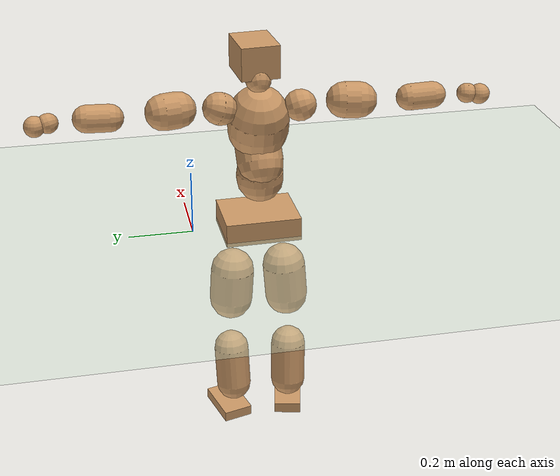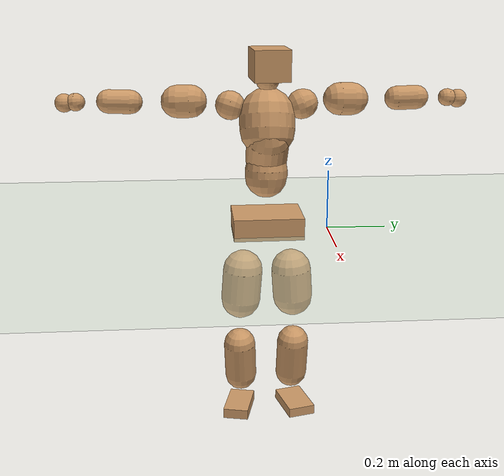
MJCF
<mujoco model="humanoid">
  <compiler coordinate="local" angle="radian"/>
  <default>
    <joint damping="0.0" armature="0.01" stiffness="0.0" limited="true"/>
    <geom conaffinity="1" condim="3" contype="7" margin="0.001" rgba="0.8 0.6 .4 1"/>
  </default>
  <asset>
    <texture type="skybox" builtin="gradient" rgb1=".4 .5 .6" rgb2="0 0 0" width="100" height="100"/>
    <texture builtin="flat" height="1278" mark="cross" markrgb="1 1 1" name="texgeom" random="0.01" rgb1="0.8 0.6 0.4" rgb2="0.8 0.6 0.4" type="cube" width="127"/>
    <texture builtin="checker" height="100" name="texplane" rgb1="0 0 0" rgb2="0.8 0.8 0.8" type="2d" width="100"/>
    <material name="MatPlane" reflectance="0.5" shininess="1" specular="1" texrepeat="60 60" texture="texplane"/>
    <material name="geom" texture="texgeom" texuniform="true"/>
  </asset>
  <worldbody>
    <light cutoff="100" diffuse="1 1 1" dir="-0 0 -1.3" directional="true" exponent="1" pos="0 0 1.3" specular=".1 .1 .1"/>
    <geom conaffinity="1" condim="3" name="floor" pos="0 0 0" rgba="0.8 0.9 0.8 1" size="100 100 .2" type="plane" material="MatPlane"/>
    <body name="Pelvis" pos="-0 -0.2062 0.0339">
      <freejoint name="Pelvis"/>
      <geom type="box" contype="1" conaffinity="1" density="5359.375371" pos="-0.0054 -0.0001 -0.0117" size="0.0918 0.1176 0.0369" quat="1.0000 0.0000 0.0000 0.0084" name="Pelvis"/>
      <body name="L_Hip" pos="-0.0028 0.0777 -0.0839">
        <joint name="L_Hip_x" type="hinge" pos="0 0 0" axis="1 0 0" stiffness="1600" damping="160" armature="0.02" range="-180.0000 180.0000"/>
        <joint name="L_Hip_y" type="hinge" pos="0 0 0" axis="0 1 0" stiffness="1600" damping="160" armature="0.02" range="-180.0000 180.0000"/>
        <joint name="L_Hip_z" type="hinge" pos="0 0 0" axis="0 0 1" stiffness="1600" damping="160" armature="0.02" range="-180.0000 180.0000"/>
        <geom type="capsule" contype="1" conaffinity="1" density="2040.816327" size="0.0684" fromto="-0.0027 0.0065 -0.0982 -0.0055 0.0132 -0.2009" name="L_Hip"/>
        <body name="L_Knee" pos="-0.0082 0.0197 -0.2991">
          <joint name="L_Knee_x" type="hinge" pos="0 0 0" axis="1 0 0" stiffness="1600" damping="160" armature="0.02" range="-180.0000 180.0000"/>
          <joint name="L_Knee_y" type="hinge" pos="0 0 0" axis="0 1 0" stiffness="1600" damping="160" armature="0.02" range="-180.0000 180.0000"/>
          <joint name="L_Knee_z" type="hinge" pos="0 0 0" axis="0 0 1" stiffness="1600" damping="160" armature="0.02" range="-180.0000 180.0000"/>
          <geom type="capsule" contype="1" conaffinity="1" density="1234.567901" size="0.0559" fromto="-0.0121 -0.0022 -0.0850 -0.0306 -0.0056 -0.2145" name="L_Knee"/>
          <body name="L_Ankle" pos="-0.0427 -0.0079 -0.2996">
            <joint name="L_Ankle_x" type="hinge" pos="0 0 0" axis="1 0 0" stiffness="1600" damping="160" armature="0.02" range="-180.0000 180.0000"/>
            <joint name="L_Ankle_y" type="hinge" pos="0 0 0" axis="0 1 0" stiffness="1600" damping="160" armature="0.02" range="-180.0000 180.0000"/>
            <joint name="L_Ankle_z" type="hinge" pos="0 0 0" axis="0 0 1" stiffness="1600" damping="160" armature="0.02" range="-180.0000 180.0000"/>
            <geom type="box" contype="1" conaffinity="1" density="1000.000002" pos="0.0506 0.0130 -0.0221" size="0.0765 0.0474 0.0166" quat="0.9921 0.0000 0.0000 0.1255" name="L_Ankle"/>
            <body name="L_Toe" pos="0.1013 0.026 -0.0441">
              <joint name="L_Toe_x" type="hinge" pos="0 0 0" axis="1 0 0" stiffness="1000" damping="100" armature="0.02" range="-180.0000 180.0000"/>
              <joint name="L_Toe_y" type="hinge" pos="0 0 0" axis="0 1 0" stiffness="1000" damping="100" armature="0.02" range="-180.0000 180.0000"/>
              <joint name="L_Toe_z" type="hinge" pos="0 0 0" axis="0 0 1" stiffness="1000" damping="100" armature="0.02" range="-180.0000 180.0000"/>
              <geom type="box" contype="1" conaffinity="1" density="7921966.196565" pos="0.0000 0.0000 0.0229" size="0.0009 0.0023 0.0009" quat="0.9912 0.0000 0.0000 0.1322" name="L_Toe"/>
            </body>
          </body>
        </body>
      </body>
      <body name="R_Hip" pos="-0.0024 -0.0761 -0.0828">
        <joint name="R_Hip_x" type="hinge" pos="0 0 0" axis="1 0 0" stiffness="1600" damping="160" armature="0.02" range="-180.0000 180.0000"/>
        <joint name="R_Hip_y" type="hinge" pos="0 0 0" axis="0 1 0" stiffness="1600" damping="160" armature="0.02" range="-180.0000 180.0000"/>
        <joint name="R_Hip_z" type="hinge" pos="0 0 0" axis="0 0 1" stiffness="1600" damping="160" armature="0.02" range="-180.0000 180.0000"/>
        <geom type="capsule" contype="1" conaffinity="1" density="2040.816327" size="0.068" fromto="-0.0035 -0.0073 -0.0977 -0.0075 -0.0155 -0.2075" name="R_Hip"/>
        <body name="R_Knee" pos="-0.011 -0.0227 -0.3052">
          <joint name="R_Knee_x" type="hinge" pos="0 0 0" axis="1 0 0" stiffness="1600" damping="160" armature="0.02" range="-180.0000 180.0000"/>
          <joint name="R_Knee_y" type="hinge" pos="0 0 0" axis="0 1 0" stiffness="1600" damping="160" armature="0.02" range="-180.0000 180.0000"/>
          <joint name="R_Knee_z" type="hinge" pos="0 0 0" axis="0 0 1" stiffness="1600" damping="160" armature="0.02" range="-180.0000 180.0000"/>
          <geom type="capsule" contype="1" conaffinity="1" density="1234.567901" size="0.056" fromto="-0.0122 0.0025 -0.0851 -0.0308 0.0064 -0.2152" name="R_Knee"/>
          <body name="R_Ankle" pos="-0.0429 0.009 -0.3003">
            <joint name="R_Ankle_x" type="hinge" pos="0 0 0" axis="1 0 0" stiffness="1600" damping="160" armature="0.02" range="-180.0000 180.0000"/>
            <joint name="R_Ankle_y" type="hinge" pos="0 0 0" axis="0 1 0" stiffness="1600" damping="160" armature="0.02" range="-180.0000 180.0000"/>
            <joint name="R_Ankle_z" type="hinge" pos="0 0 0" axis="0 0 1" stiffness="1600" damping="160" armature="0.02" range="-180.0000 180.0000"/>
            <geom type="box" contype="1" conaffinity="1" density="999.999938" pos="0.0522 -0.0117 -0.0190" size="0.0744 0.0439 0.0176" quat="0.9939 0.0000 0.0000 -0.1104" name="R_Ankle"/>
            <body name="R_Toe" pos="0.1043 -0.0235 -0.0381">
              <joint name="R_Toe_x" type="hinge" pos="0 0 0" axis="1 0 0" stiffness="1000" damping="100" armature="0.02" range="-180.0000 180.0000"/>
              <joint name="R_Toe_y" type="hinge" pos="0 0 0" axis="0 1 0" stiffness="1000" damping="100" armature="0.02" range="-180.0000 180.0000"/>
              <joint name="R_Toe_z" type="hinge" pos="0 0 0" axis="0 0 1" stiffness="1000" damping="100" armature="0.02" range="-180.0000 180.0000"/>
              <geom type="box" contype="1" conaffinity="1" density="7942871.620237" pos="0.0000 0.0000 0.0201" size="0.0009 0.0022 0.0009" quat="0.9950 0.0000 0.0000 -0.0994" name="R_Toe"/>
            </body>
          </body>
        </body>
      </body>
      <body name="Torso" pos="-0.027 -0.0021 0.0963">
        <joint name="Torso_x" type="hinge" pos="0 0 0" axis="1 0 0" stiffness="2000" damping="200" armature="0.02" range="-180.0000 180.0000"/>
        <joint name="Torso_y" type="hinge" pos="0 0 0" axis="0 1 0" stiffness="2000" damping="200" armature="0.02" range="-180.0000 180.0000"/>
        <joint name="Torso_z" type="hinge" pos="0 0 0" axis="0 0 1" stiffness="2000" damping="200" armature="0.02" range="-180.0000 180.0000"/>
        <geom type="capsule" contype="1" conaffinity="1" density="2040.816327" size="0.0718" fromto="-0.0043 0.0017 0.0716 -0.0028 0.0011 0.0473" name="Torso"/>
        <body name="Spine" pos="-0.0071 0.0028 0.1189">
          <joint name="Spine_x" type="hinge" pos="0 0 0" axis="1 0 0" stiffness="2000" damping="200" armature="0.02" range="-180.0000 180.0000"/>
          <joint name="Spine_y" type="hinge" pos="0 0 0" axis="0 1 0" stiffness="2000" damping="200" armature="0.02" range="-180.0000 180.0000"/>
          <joint name="Spine_z" type="hinge" pos="0 0 0" axis="0 0 1" stiffness="2000" damping="200" armature="0.02" range="-180.0000 180.0000"/>
          <geom type="capsule" contype="1" conaffinity="1" density="2040.816327" size="0.0705" fromto="0.0383 0.0024 0.0592 -0.0091 -0.0006 -0.0141" name="Spine"/>
          <body name="Chest" pos="0.0292 0.0018 0.0451">
            <joint name="Chest_x" type="hinge" pos="0 0 0" axis="1 0 0" stiffness="2000" damping="200" armature="0.02" range="-180.0000 180.0000"/>
            <joint name="Chest_y" type="hinge" pos="0 0 0" axis="0 1 0" stiffness="2000" damping="200" armature="0.02" range="-180.0000 180.0000"/>
            <joint name="Chest_z" type="hinge" pos="0 0 0" axis="0 0 1" stiffness="2000" damping="200" armature="0.02" range="-180.0000 180.0000"/>
            <geom type="capsule" contype="1" conaffinity="1" density="2040.816327" size="0.0924" fromto="-0.0264 -0.0000 0.0886 -0.0133 -0.0000 0.0445" name="Chest"/>
            <body name="Neck" pos="-0.049 0.0011 0.1841">
              <joint name="Neck_x" type="hinge" pos="0 0 0" axis="1 0 0" stiffness="1000" damping="100" armature="0.02" range="-180.0000 180.0000"/>
              <joint name="Neck_y" type="hinge" pos="0 0 0" axis="0 1 0" stiffness="1000" damping="100" armature="0.02" range="-180.0000 180.0000"/>
              <joint name="Neck_z" type="hinge" pos="0 0 0" axis="0 0 1" stiffness="1000" damping="100" armature="0.02" range="-180.0000 180.0000"/>
              <geom type="capsule" contype="1" conaffinity="1" density="1000" size="0.0392" fromto="0.0254 0.0008 0.0299 0.0174 0.0005 0.0205" name="Neck"/>
              <body name="Head" pos="0.0428 0.0013 0.0504">
                <joint name="Head_x" type="hinge" pos="0 0 0" axis="1 0 0" stiffness="1000" damping="100" armature="0.02" range="-180.0000 180.0000"/>
                <joint name="Head_y" type="hinge" pos="0 0 0" axis="0 1 0" stiffness="1000" damping="100" armature="0.02" range="-180.0000 180.0000"/>
                <joint name="Head_z" type="hinge" pos="0 0 0" axis="0 0 1" stiffness="1000" damping="100" armature="0.02" range="-180.0000 180.0000"/>
                <geom type="box" contype="1" conaffinity="1" density="2249.99969" pos="0.0224 0.0016 0.0262" size="0.0736 0.0585 0.0501" quat="0.9993 0.0000 0.0000 0.0367" name="Head"/>
              </body>
            </body>
            <body name="L_Thorax" pos="-0.0313 0.0743 0.109">
              <joint name="L_Thorax_x" type="hinge" pos="0 0 0" axis="1 0 0" stiffness="1000" damping="100" armature="0.02" range="-180.0000 180.0000"/>
              <joint name="L_Thorax_y" type="hinge" pos="0 0 0" axis="0 1 0" stiffness="1000" damping="100" armature="0.02" range="-180.0000 180.0000"/>
              <joint name="L_Thorax_z" type="hinge" pos="0 0 0" axis="0 0 1" stiffness="1000" damping="100" armature="0.02" range="-180.0000 180.0000"/>
              <geom type="capsule" contype="1" conaffinity="1" density="1000" size="0.0489" fromto="-0.0051 0.0458 0.0165 -0.0044 0.0399 0.0144" name="L_Thorax"/>
              <body name="L_Shoulder" pos="-0.0096 0.0856 0.0309">
                <joint name="L_Shoulder_x" type="hinge" pos="0 0 0" axis="1 0 0" stiffness="1000" damping="100" armature="0.02" range="-720.0000 720.0000"/>
                <joint name="L_Shoulder_y" type="hinge" pos="0 0 0" axis="0 1 0" stiffness="1000" damping="100" armature="0.02" range="-720.0000 720.0000"/>
                <joint name="L_Shoulder_z" type="hinge" pos="0 0 0" axis="0 0 1" stiffness="1000" damping="100" armature="0.02" range="-720.0000 720.0000"/>
                <geom type="capsule" contype="1" conaffinity="1" density="1000" size="0.054" fromto="-0.0111 0.0832 -0.0027 -0.0169 0.1262 -0.0041" name="L_Shoulder"/>
                <body name="L_Elbow" pos="-0.0281 0.2095 -0.0068">
                  <joint name="L_Elbow_x" type="hinge" pos="0 0 0" axis="1 0 0" stiffness="1000" damping="100" armature="0.02" range="-720.0000 720.0000"/>
                  <joint name="L_Elbow_y" type="hinge" pos="0 0 0" axis="0 1 0" stiffness="1000" damping="100" armature="0.02" range="-720.0000 720.0000"/>
                  <joint name="L_Elbow_z" type="hinge" pos="0 0 0" axis="0 0 1" stiffness="1000" damping="100" armature="0.02" range="-720.0000 720.0000"/>
                  <geom type="capsule" contype="1" conaffinity="1" density="1000" size="0.0402" fromto="0.0009 0.0702 0.0022 0.0017 0.1367 0.0042" name="L_Elbow"/>
                  <body name="L_Wrist" pos="0.0026 0.2069 0.0064">
                    <joint name="L_Wrist_x" type="hinge" pos="0 0 0" axis="1 0 0" stiffness="600" damping="60" armature="0.02" range="-180.0000 180.0000"/>
                    <joint name="L_Wrist_y" type="hinge" pos="0 0 0" axis="0 1 0" stiffness="600" damping="60" armature="0.02" range="-180.0000 180.0000"/>
                    <joint name="L_Wrist_z" type="hinge" pos="0 0 0" axis="0 0 1" stiffness="600" damping="60" armature="0.02" range="-180.0000 180.0000"/>
                    <geom type="capsule" contype="1" conaffinity="1" density="1000" size="0.0293" fromto="-0.0059 0.0368 -0.0044 -0.0063 0.0387 -0.0047" name="L_Wrist"/>
                    <body name="L_Hand" pos="-0.0122 0.0755 -0.0091">
                      <joint name="L_Hand_x" type="hinge" pos="0 0 0" axis="1 0 0" stiffness="600" damping="60" armature="0.02" range="-180.0000 180.0000"/>
                      <joint name="L_Hand_y" type="hinge" pos="0 0 0" axis="0 1 0" stiffness="600" damping="60" armature="0.02" range="-180.0000 180.0000"/>
                      <joint name="L_Hand_z" type="hinge" pos="0 0 0" axis="0 0 1" stiffness="600" damping="60" armature="0.02" range="-180.0000 180.0000"/>
                      <geom type="sphere" contype="1" conaffinity="1" density="1000" size="0.0307" pos="0.0000 0.0000 0.0000" name="L_Hand"/>
                    </body>
                  </body>
                </body>
              </body>
            </body>
            <body name="R_Thorax" pos="-0.0386 -0.0754 0.1061">
              <joint name="R_Thorax_x" type="hinge" pos="0 0 0" axis="1 0 0" stiffness="1000" damping="100" armature="0.02" range="-180.0000 180.0000"/>
              <joint name="R_Thorax_y" type="hinge" pos="0 0 0" axis="0 1 0" stiffness="1000" damping="100" armature="0.02" range="-180.0000 180.0000"/>
              <joint name="R_Thorax_z" type="hinge" pos="0 0 0" axis="0 0 1" stiffness="1000" damping="100" armature="0.02" range="-180.0000 180.0000"/>
              <geom type="capsule" contype="1" conaffinity="1" density="1000" size="0.048" fromto="-0.0067 -0.0450 0.0147 -0.0070 -0.0469 0.0153" name="R_Thorax"/>
              <body name="R_Shoulder" pos="-0.0138 -0.0919 0.03">
                <joint name="R_Shoulder_x" type="hinge" pos="0 0 0" axis="1 0 0" stiffness="1000" damping="100" armature="0.02" range="-720.0000 720.0000"/>
                <joint name="R_Shoulder_y" type="hinge" pos="0 0 0" axis="0 1 0" stiffness="1000" damping="100" armature="0.02" range="-720.0000 720.0000"/>
                <joint name="R_Shoulder_z" type="hinge" pos="0 0 0" axis="0 0 1" stiffness="1000" damping="100" armature="0.02" range="-720.0000 720.0000"/>
                <geom type="capsule" contype="1" conaffinity="1" density="1000" size="0.0544" fromto="-0.0087 -0.0839 -0.0027 -0.0132 -0.1272 -0.0041" name="R_Shoulder"/>
                <body name="R_Elbow" pos="-0.0218 -0.2111 -0.0068">
                  <joint name="R_Elbow_x" type="hinge" pos="0 0 0" axis="1 0 0" stiffness="1000" damping="100" armature="0.02" range="-720.0000 720.0000"/>
                  <joint name="R_Elbow_y" type="hinge" pos="0 0 0" axis="0 1 0" stiffness="1000" damping="100" armature="0.02" range="-720.0000 720.0000"/>
                  <joint name="R_Elbow_z" type="hinge" pos="0 0 0" axis="0 0 1" stiffness="1000" damping="100" armature="0.02" range="-720.0000 720.0000"/>
                  <geom type="capsule" contype="1" conaffinity="1" density="1000" size="0.0398" fromto="0.0003 -0.0698 0.0021 0.0006 -0.1414 0.0043" name="R_Elbow"/>
                  <body name="R_Wrist" pos="0.0009 -0.2112 0.0064">
                    <joint name="R_Wrist_x" type="hinge" pos="0 0 0" axis="1 0 0" stiffness="600" damping="60" armature="0.02" range="-180.0000 180.0000"/>
                    <joint name="R_Wrist_y" type="hinge" pos="0 0 0" axis="0 1 0" stiffness="600" damping="60" armature="0.02" range="-180.0000 180.0000"/>
                    <joint name="R_Wrist_z" type="hinge" pos="0 0 0" axis="0 0 1" stiffness="600" damping="60" armature="0.02" range="-180.0000 180.0000"/>
                    <geom type="capsule" contype="1" conaffinity="1" density="1000" size="0.0298" fromto="-0.0048 -0.0368 -0.0033 -0.0051 -0.0388 -0.0035" name="R_Wrist"/>
                    <body name="R_Hand" pos="-0.0099 -0.0756 -0.0068">
                      <joint name="R_Hand_x" type="hinge" pos="0 0 0" axis="1 0 0" stiffness="600" damping="60" armature="0.02" range="-180.0000 180.0000"/>
                      <joint name="R_Hand_y" type="hinge" pos="0 0 0" axis="0 1 0" stiffness="600" damping="60" armature="0.02" range="-180.0000 180.0000"/>
                      <joint name="R_Hand_z" type="hinge" pos="0 0 0" axis="0 0 1" stiffness="600" damping="60" armature="0.02" range="-180.0000 180.0000"/>
                      <geom type="sphere" contype="1" conaffinity="1" density="1000" size="0.0308" pos="0.0000 0.0000 0.0000" name="R_Hand"/>
                    </body>
                  </body>
                </body>
              </body>
            </body>
          </body>
        </body>
      </body>
    </body>
  </worldbody>
  <actuator>
    <motor name="L_Hip_x" joint="L_Hip_x" gear="500"/>
    <motor name="L_Hip_y" joint="L_Hip_y" gear="500"/>
    <motor name="L_Hip_z" joint="L_Hip_z" gear="500"/>
    <motor name="L_Knee_x" joint="L_Knee_x" gear="500"/>
    <motor name="L_Knee_y" joint="L_Knee_y" gear="500"/>
    <motor name="L_Knee_z" joint="L_Knee_z" gear="500"/>
    <motor name="L_Ankle_x" joint="L_Ankle_x" gear="500"/>
    <motor name="L_Ankle_y" joint="L_Ankle_y" gear="500"/>
    <motor name="L_Ankle_z" joint="L_Ankle_z" gear="500"/>
    <motor name="L_Toe_x" joint="L_Toe_x" gear="500"/>
    <motor name="L_Toe_y" joint="L_Toe_y" gear="500"/>
    <motor name="L_Toe_z" joint="L_Toe_z" gear="500"/>
    <motor name="R_Hip_x" joint="R_Hip_x" gear="500"/>
    <motor name="R_Hip_y" joint="R_Hip_y" gear="500"/>
    <motor name="R_Hip_z" joint="R_Hip_z" gear="500"/>
    <motor name="R_Knee_x" joint="R_Knee_x" gear="500"/>
    <motor name="R_Knee_y" joint="R_Knee_y" gear="500"/>
    <motor name="R_Knee_z" joint="R_Knee_z" gear="500"/>
    <motor name="R_Ankle_x" joint="R_Ankle_x" gear="500"/>
    <motor name="R_Ankle_y" joint="R_Ankle_y" gear="500"/>
    <motor name="R_Ankle_z" joint="R_Ankle_z" gear="500"/>
    <motor name="R_Toe_x" joint="R_Toe_x" gear="500"/>
    <motor name="R_Toe_y" joint="R_Toe_y" gear="500"/>
    <motor name="R_Toe_z" joint="R_Toe_z" gear="500"/>
    <motor name="Torso_x" joint="Torso_x" gear="500"/>
    <motor name="Torso_y" joint="Torso_y" gear="500"/>
    <motor name="Torso_z" joint="Torso_z" gear="500"/>
    <motor name="Spine_x" joint="Spine_x" gear="500"/>
    <motor name="Spine_y" joint="Spine_y" gear="500"/>
    <motor name="Spine_z" joint="Spine_z" gear="500"/>
    <motor name="Chest_x" joint="Chest_x" gear="500"/>
    <motor name="Chest_y" joint="Chest_y" gear="500"/>
    <motor name="Chest_z" joint="Chest_z" gear="500"/>
    <motor name="Neck_x" joint="Neck_x" gear="500"/>
    <motor name="Neck_y" joint="Neck_y" gear="500"/>
    <motor name="Neck_z" joint="Neck_z" gear="500"/>
    <motor name="Head_x" joint="Head_x" gear="500"/>
    <motor name="Head_y" joint="Head_y" gear="500"/>
    <motor name="Head_z" joint="Head_z" gear="500"/>
    <motor name="L_Thorax_x" joint="L_Thorax_x" gear="500"/>
    <motor name="L_Thorax_y" joint="L_Thorax_y" gear="500"/>
    <motor name="L_Thorax_z" joint="L_Thorax_z" gear="500"/>
    <motor name="L_Shoulder_x" joint="L_Shoulder_x" gear="500"/>
    <motor name="L_Shoulder_y" joint="L_Shoulder_y" gear="500"/>
    <motor name="L_Shoulder_z" joint="L_Shoulder_z" gear="500"/>
    <motor name="L_Elbow_x" joint="L_Elbow_x" gear="500"/>
    <motor name="L_Elbow_y" joint="L_Elbow_y" gear="500"/>
    <motor name="L_Elbow_z" joint="L_Elbow_z" gear="500"/>
    <motor name="L_Wrist_x" joint="L_Wrist_x" gear="500"/>
    <motor name="L_Wrist_y" joint="L_Wrist_y" gear="500"/>
    <motor name="L_Wrist_z" joint="L_Wrist_z" gear="500"/>
    <motor name="L_Hand_x" joint="L_Hand_x" gear="500"/>
    <motor name="L_Hand_y" joint="L_Hand_y" gear="500"/>
    <motor name="L_Hand_z" joint="L_Hand_z" gear="500"/>
    <motor name="R_Thorax_x" joint="R_Thorax_x" gear="500"/>
    <motor name="R_Thorax_y" joint="R_Thorax_y" gear="500"/>
    <motor name="R_Thorax_z" joint="R_Thorax_z" gear="500"/>
    <motor name="R_Shoulder_x" joint="R_Shoulder_x" gear="500"/>
    <motor name="R_Shoulder_y" joint="R_Shoulder_y" gear="500"/>
    <motor name="R_Shoulder_z" joint="R_Shoulder_z" gear="500"/>
    <motor name="R_Elbow_x" joint="R_Elbow_x" gear="500"/>
    <motor name="R_Elbow_y" joint="R_Elbow_y" gear="500"/>
    <motor name="R_Elbow_z" joint="R_Elbow_z" gear="500"/>
    <motor name="R_Wrist_x" joint="R_Wrist_x" gear="500"/>
    <motor name="R_Wrist_y" joint="R_Wrist_y" gear="500"/>
    <motor name="R_Wrist_z" joint="R_Wrist_z" gear="500"/>
    <motor name="R_Hand_x" joint="R_Hand_x" gear="500"/>
    <motor name="R_Hand_y" joint="R_Hand_y" gear="500"/>
    <motor name="R_Hand_z" joint="R_Hand_z" gear="500"/>
  </actuator>
  <contact>
    <exclude body1="Torso" body2="Chest"/>
    <exclude body1="Head" body2="Chest"/>
    <exclude body1="R_Knee" body2="R_Toe"/>
    <exclude body1="R_Knee" body2="L_Ankle"/>
    <exclude body1="R_Knee" body2="L_Toe"/>
    <exclude body1="L_Knee" body2="L_Toe"/>
    <exclude body1="L_Knee" body2="R_Ankle"/>
    <exclude body1="L_Knee" body2="R_Toe"/>
    <exclude body1="L_Shoulder" body2="Chest"/>
    <exclude body1="R_Shoulder" body2="Chest"/>
  </contact>
  <sensor/>
  <size njmax="700" nconmax="700"/>
</mujoco>
